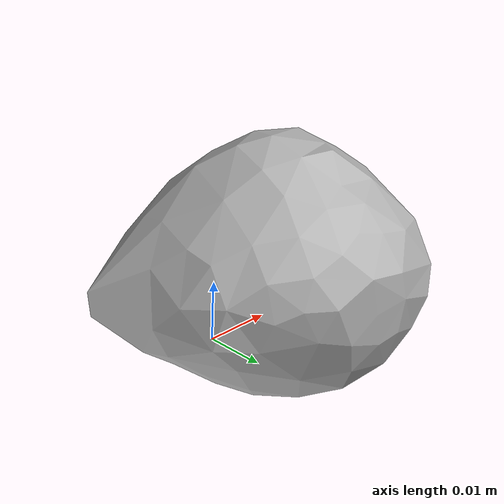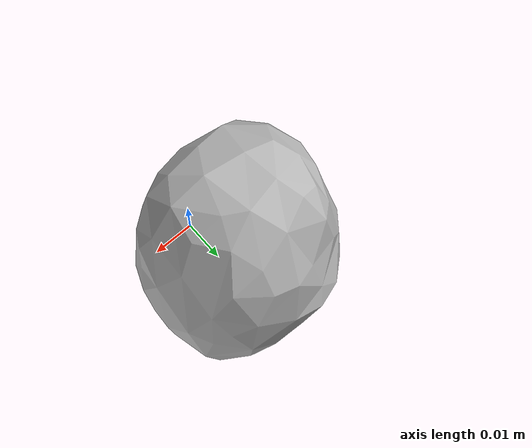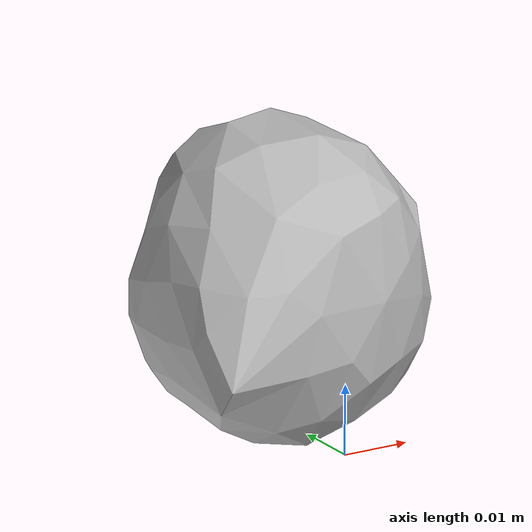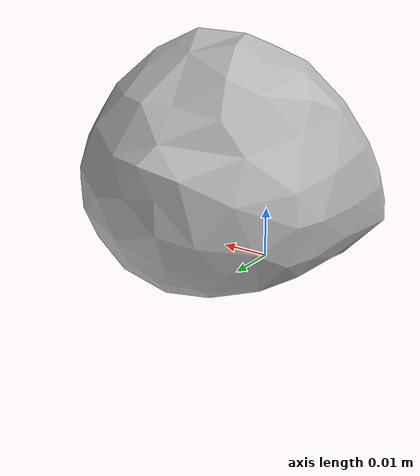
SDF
<?xml version='1.0'?>
<sdf version="1.4">
  <model name="012_strawberry">
    <static>false</static>
    <link name="link">
      <inertial>
        <pose>-0.0014726018056413993 0.015500708812185378 0.021103926945295108 1.8026468272094376 -0.20849560819513246 -0.8585248014464476</pose>
        <mass>0.004983596340134968</mass>
        <inertia>
          <ixx>1.1681786223221699e-06</ixx>
          <ixy>-4.225884287465863e-22</ixy>
          <ixz>-2.0869982900770656e-22</ixz>
          <iyy>1.062307480430602e-06</iyy>
          <iyz>2.06782125190025e-23</iyz>
          <izz>9.568664244850808e-07</izz>
        </inertia>
      </inertial>
      <collision name="collision">
        <geometry>
          <mesh>
            <!-- Use a downsampled mesh for collisions -->
            <uri>model:///012_strawberry/012_strawberry_250_collision.stl</uri>
	        </mesh>
        </geometry>
        <surface>
      </surface>
      </collision>
      <visual name="visual">
        <geometry>
          <mesh>
            <uri>model:///012_strawberry/textured.obj</uri>
	        </mesh>
        </geometry>
        <material>
          <script>
            <uri>model:///012_strawberry/012_strawberry.material</uri>
            <name>012_strawberry</name>
          </script>
        </material>
      </visual>
    </link>
  </model>
</sdf>
